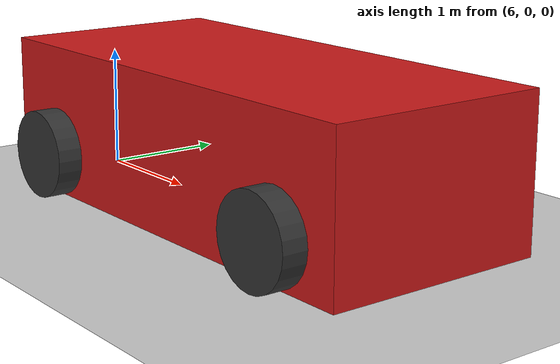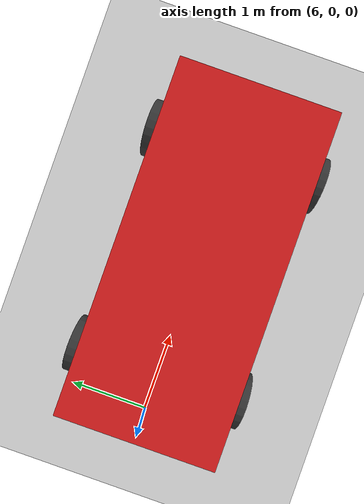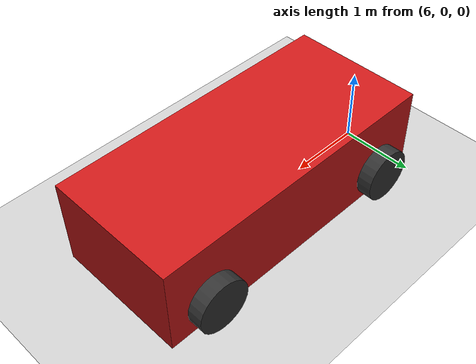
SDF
<sdf version="1.9">
 <world name="walking_human_and_car">
  <physics type="ode">
   <max_step_size>0.004</max_step_size>
   <real_time_factor>1.0</real_time_factor>
   <real_time_update_rate>250</real_time_update_rate>
  </physics>
  <gravity>0 0 -9.8</gravity>
  <magnetic_field>6e-06 2.3e-05 -4.2e-05</magnetic_field>
  <atmosphere type="adiabatic"/>
  <scene>
   <grid>false</grid>
   <ambient>0.4 0.4 0.4 1</ambient>
   <background>0.7 0.7 0.7 1</background>
   <shadows>true</shadows>
  </scene>
  <model name="ground_plane">
   <static>true</static>
   <link name="link">
    <collision name="collision">
     <geometry><plane><normal>0 0 1</normal><size>1 1</size></plane></geometry>
    </collision>
    <visual name="visual">
     <geometry><plane><normal>0 0 1</normal><size>500 500</size></plane></geometry>
     <material>
      <ambient>0.8 0.8 0.8 1</ambient>
      <diffuse>0.8 0.8 0.8 1</diffuse>
      <specular>0.8 0.8 0.8 1</specular>
     </material>
    </visual>
    <inertial>
     <mass>1</mass>
     <inertia><ixx>1</ixx><ixy>0</ixy><ixz>0</ixz><iyy>1</iyy><iyz>0</iyz><izz>1</izz></inertia>
    </inertial>
   </link>
  </model>
  <light name="sunUTC" type="directional">
   <pose>0 0 500 0 -0 0</pose>
   <intensity>1</intensity>
   <direction>0.001 0.625 -0.78</direction>
   <diffuse>0.904 0.904 0.904 1</diffuse>
   <specular>0.271 0.271 0.271 1</specular>
   <attenuation><range>2000</range><linear>0</linear><constant>1</constant><quadratic>0</quadratic></attenuation>
   <spot><inner_angle>0</inner_angle><outer_angle>0</outer_angle><falloff>0</falloff></spot>
  </light>
  <model name="car">
   <pose>8 0 0 0 0 0</pose>
   <static>false</static>
   <link name="chassis">
    <inertial>
     <mass>1200</mass>
     <inertia><ixx>468</ixx><ixy>0</ixy><ixz>0</ixz><iyy>1744</iyy><iyz>0</iyz><izz>1924</izz></inertia>
    </inertial>
    <visual name="body_visual">
     <pose>0 0 0.6 0 0 0</pose>
     <geometry><box><size>4.0 1.8 1.2</size></box></geometry>
     <material>
      <ambient>0.8 0.1 0.1 1</ambient>
      <diffuse>0.8 0.1 0.1 1</diffuse>
      <specular>0.8 0.8 0.8 1</specular>
     </material>
    </visual>
    <collision name="body_collision">
     <pose>0 0 0.6 0 0 0</pose>
     <geometry><box><size>4.0 1.8 1.2</size></box></geometry>
    </collision>
    <visual name="wheel_fl_visual">
     <pose>1.4 0.95 0.35 1.5708 0 0</pose>
     <geometry><cylinder><radius>0.35</radius><length>0.3</length></cylinder></geometry>
     <material>
      <ambient>0.2 0.2 0.2 1</ambient>
      <diffuse>0.2 0.2 0.2 1</diffuse>
      <specular>0.2 0.2 0.2 1</specular>
     </material>
    </visual>
    <visual name="wheel_fr_visual">
     <pose>1.4 -0.95 0.35 1.5708 0 0</pose>
     <geometry><cylinder><radius>0.35</radius><length>0.3</length></cylinder></geometry>
     <material>
      <ambient>0.2 0.2 0.2 1</ambient>
      <diffuse>0.2 0.2 0.2 1</diffuse>
      <specular>0.2 0.2 0.2 1</specular>
     </material>
    </visual>
    <visual name="wheel_rl_visual">
     <pose>-1.4 0.95 0.35 1.5708 0 0</pose>
     <geometry><cylinder><radius>0.35</radius><length>0.3</length></cylinder></geometry>
     <material>
      <ambient>0.2 0.2 0.2 1</ambient>
      <diffuse>0.2 0.2 0.2 1</diffuse>
      <specular>0.2 0.2 0.2 1</specular>
     </material>
    </visual>
    <visual name="wheel_rr_visual">
     <pose>-1.4 -0.95 0.35 1.5708 0 0</pose>
     <geometry><cylinder><radius>0.35</radius><length>0.3</length></cylinder></geometry>
     <material>
      <ambient>0.2 0.2 0.2 1</ambient>
      <diffuse>0.2 0.2 0.2 1</diffuse>
      <specular>0.2 0.2 0.2 1</specular>
     </material>
    </visual>
   </link>
   <plugin filename="gz-sim-velocity-control-system" name="gz::sim::systems::VelocityControl"/>
  </model>
  <spherical_coordinates>
   <surface_model>EARTH_WGS84</surface_model>
   <world_frame_orientation>ENU</world_frame_orientation>
   <latitude_deg>47.397971057728974</latitude_deg>
   <longitude_deg>8.546163739800146</longitude_deg>
   <elevation>0</elevation>
  </spherical_coordinates>
 </world>
</sdf>
